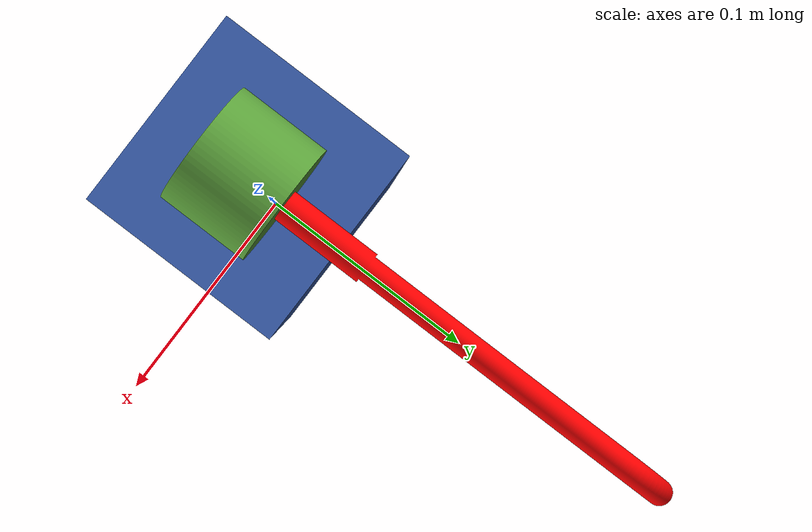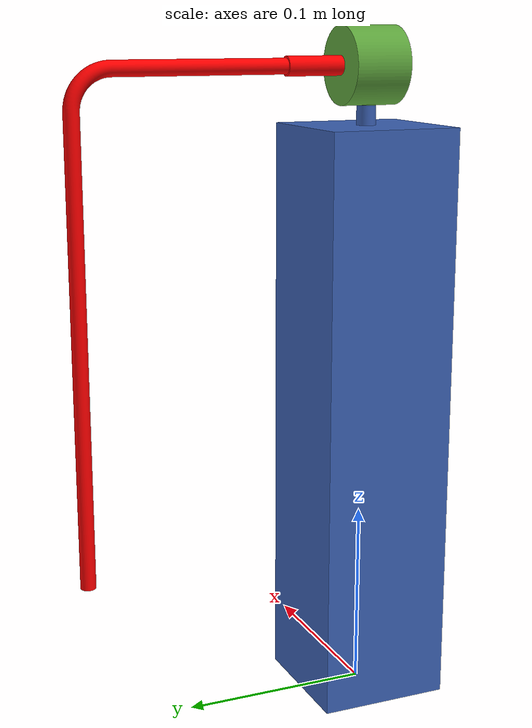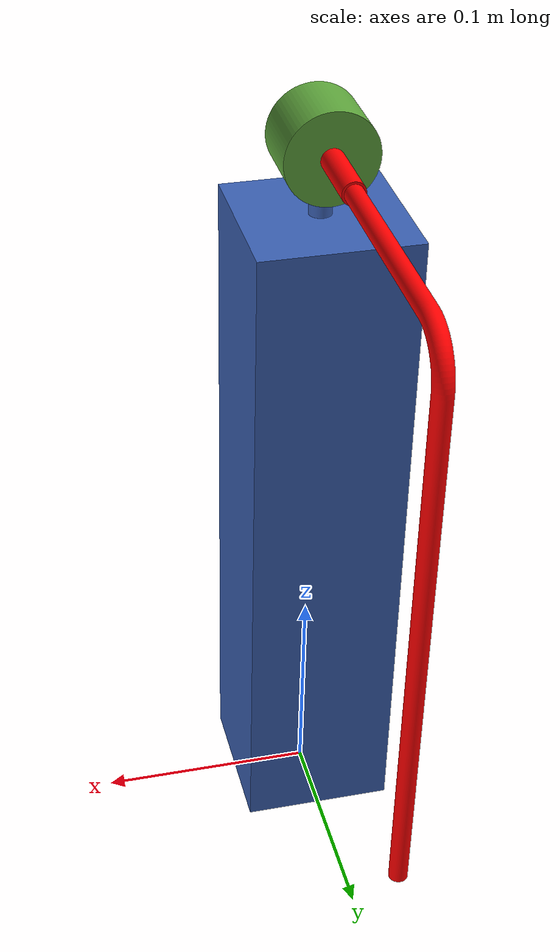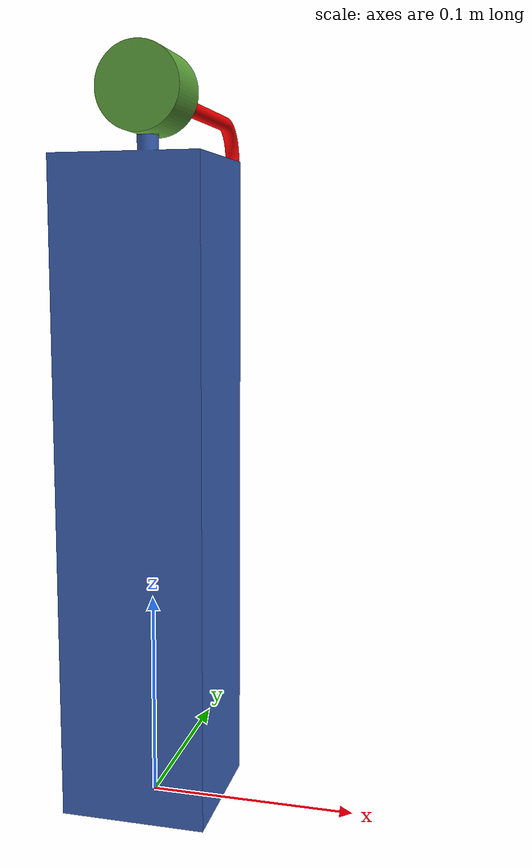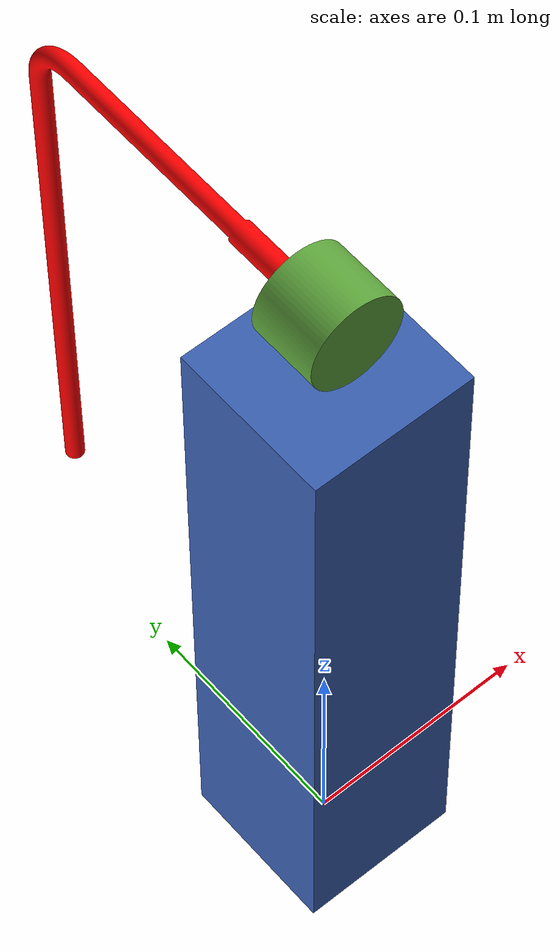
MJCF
<mujoco model="steval_pendel">
  <compiler angle="radian"/>

  <asset>
    <mesh name="base" content_type="model/stl" file="assets/base.stl"/>
    <mesh name="rotary" content_type="model/stl" file="assets/rotary.stl"/>
    <mesh name="pendel" content_type="model/stl" file="assets/pendel.stl"/>
  </asset>

  <default>
    <default class="damped_joint">
        <joint damping="0.1"/>
    </default>
    <joint damping="0.001"/>
  </default>

  <worldbody>
    <geom type="mesh" rgba="0.231373 0.380392 0.705882 1" mesh="base"/>

    <body name="rotary" pos="0 0 0.32" quat="1.32679e-06 -1 0 0">
      <inertial pos="-3.60568e-09 0 -0.0199935" quat="0.707106 -0.000328919 -0.000328918 0.707108" mass="0.101821" diaginertia="2.03712e-05 1.78261e-05 1.78134e-05"/>

      <joint name="rotary" class="damped_joint" pos="0 0 0" axis="0 0 1" range="-4.71239 4.71239"/>

      <geom pos="0 0 0.32" quat="1.32679e-06 1 0 0" type="mesh" rgba="0.372549 0.654902 0.239216 1" mesh="rotary"/>

      <body name="pendel" pos="0 -0.015 -0.02" quat="0.707105 -0.707108 0 0">
        <inertial pos="0 -0.0771612 -0.10421" quat="0.543661 0.839305 0 0" mass="0.0362517" diaginertia="0.000359053 0.000313828 4.56366e-05"/>
        <joint name="pendel" pos="0 0 0" axis="0 0 1"/>
        <geom pos="0 -0.34 0.015" quat="0.707105 -0.707108 0 0" type="mesh" rgba="1 0 0 1" mesh="pendel"/>
      </body>
    </body>
  </worldbody>

  <actuator>
    <velocity name="rotary_velocity_control" joint="rotary" gear="10"/>
  </actuator>

</mujoco>
